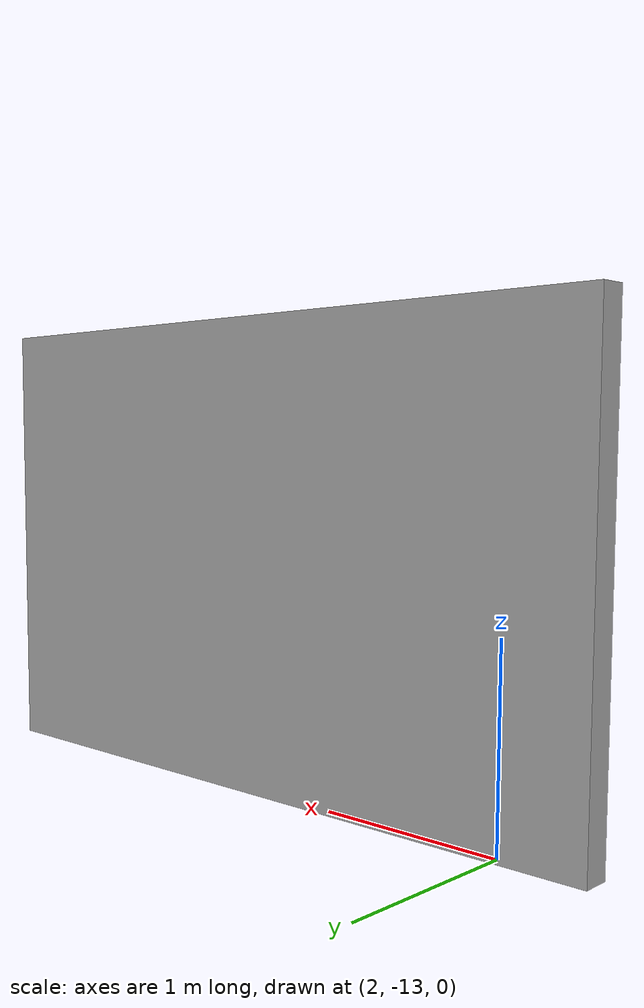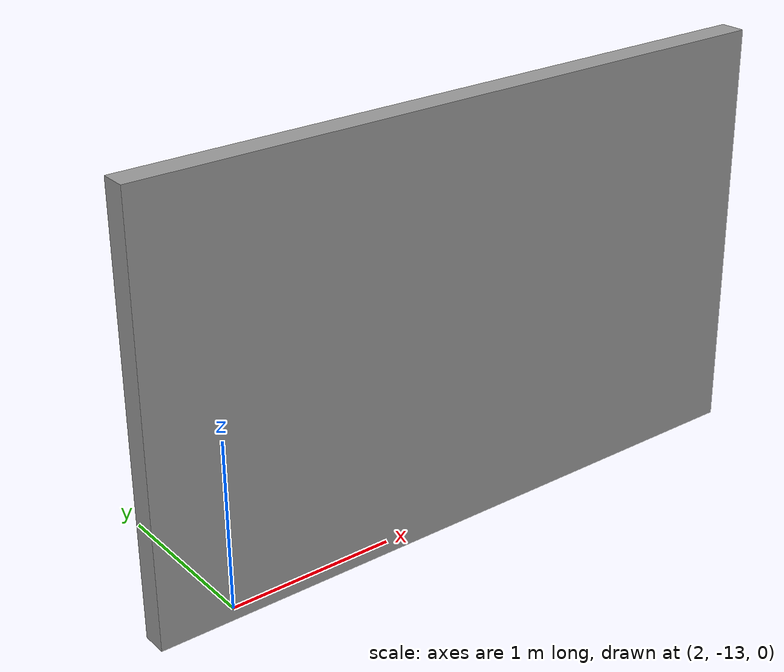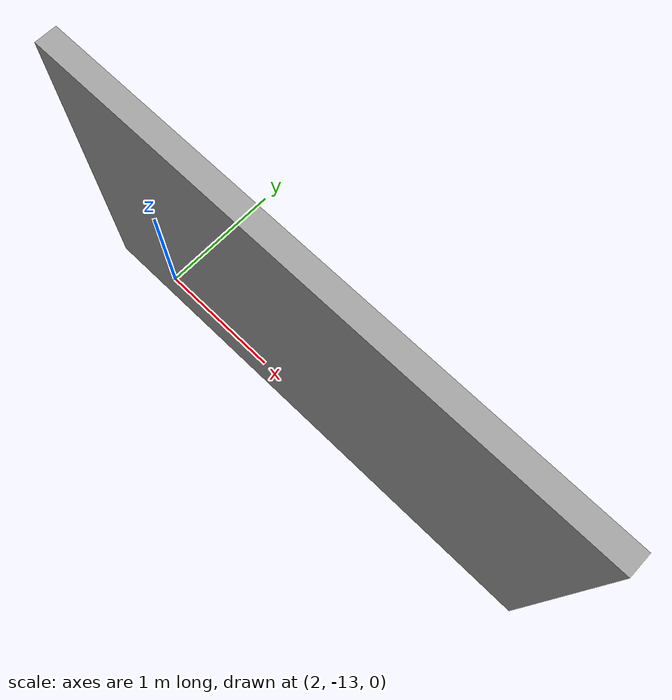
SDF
<?xml version='1.0'?>
<sdf version='1.6'>
  <model name='wall_4m'>
    <pose frame=''>2.76056 -6.54663 0 0 -0 0</pose>
    <link name='Wall_36'>
      <collision name='Wall_36_Collision'>
        <geometry>
          <box>
            <size>4 0.15 2.5</size>
          </box>
        </geometry>
        <pose frame=''>0 0 1.25 0 -0 0</pose>
      </collision>
      <visual name='Wall_36_Visual'>
        <pose frame=''>0 0 1.25 0 -0 0</pose>
        <geometry>
          <box>
            <size>4 0.15 2.5</size>
          </box>
        </geometry>
        <material>
          <script>
            <uri>file://media/materials/scripts/gazebo.material</uri>
            <name>Gazebo/Grey</name>
          </script>
          <ambient>1 1 1 1</ambient>
        </material>
        <meta>
          <layer>0</layer>
        </meta>
      </visual>
      <pose frame=''>0.760563 -6.47163 0 0 -0 0</pose>
    </link>
    <static>1</static>
  </model>
</sdf>
